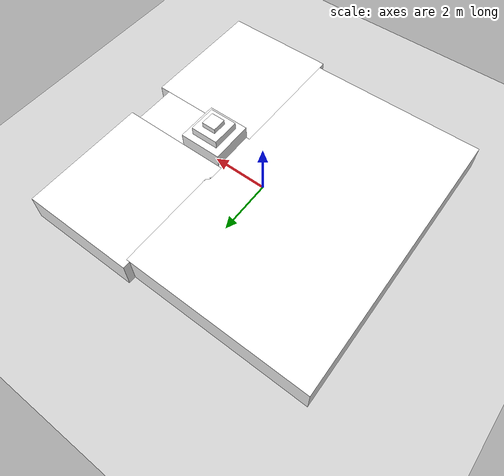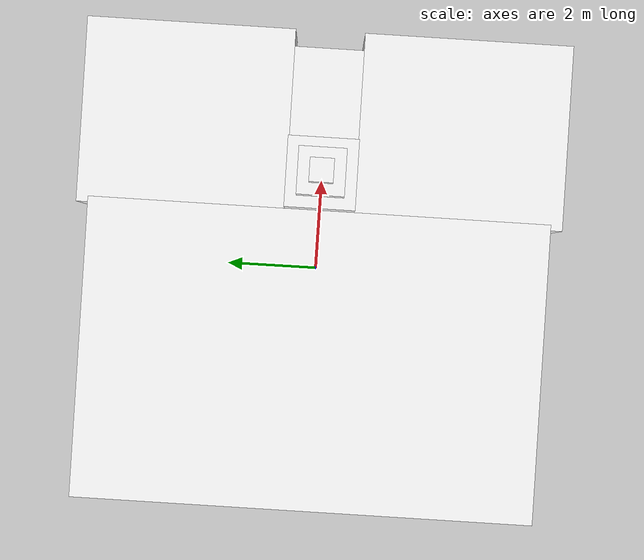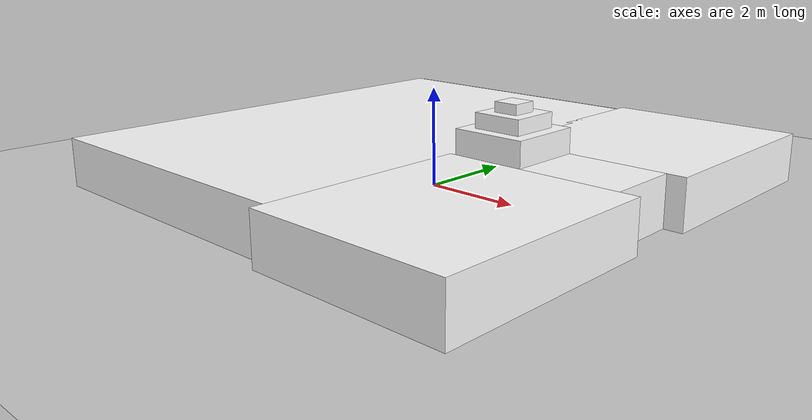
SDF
<?xml version="1.0" ?>
<sdf version="1.6">
  <world name="custom_world">
    <!-- Include the ground plane and a sun for lighting -->
    <include>
      <uri>model://ground_plane</uri>
    </include>
    <include>
      <uri>model://sun</uri>
    </include>

    <gui fullscreen='0'>
      <camera name='user_camera'>
        <pose frame=''>21.0 -21.0 14.0 0 0.3 2.348</pose>
        <view_controller>orbit</view_controller>
        <projection_type>perspective</projection_type>
      </camera>
    </gui>

    <!-- 박스 1 -->
    <model name="box_1">
      <static>true</static>
      <pose>-2 0 0.5 0 0 0</pose> <!-- Centered at (-2, 0), height at 0.5m -->
      <link name="box_1_link">
        <collision name="box_1_collision">
          <geometry>
            <box>
              <size>6.5 10 1</size>
            </box>
          </geometry>
        </collision>
        <visual name="box_1_visual">
          <geometry>
            <box>
              <size>6.5 10 1</size>
            </box>
          </geometry>
          <material>
            <script>
              <uri>model://ground/materials/scripts</uri>
              <uri>model://ground/materials/textures/</uri>
              <name>Ground/Image</name>
            </script>
            <ambient>1 1 1 1</ambient>
            <diffuse>1 1 1 1</diffuse>
            <specular>0.1 0.1 0.1 1</specular>
            <emissive>0 0 0 1</emissive>
          </material>
        </visual>
      </link>
    </model>

    <!-- 박스 2 -->
    <model name="box_2">
      <static>true</static>
      <pose>3.125 3 0.5 0 0 0</pose> <!-- Centered at (3, 3), height at 0.5m -->
      <link name="box_2_link">
        <collision name="box_2_collision">
          <geometry>
            <box>
              <size>4 4.5 1</size>
            </box>
          </geometry>
        </collision>
        <visual name="box_2_visual">
          <geometry>
            <box>
              <size>4 4.5 1</size>
            </box>
          </geometry>
          <material>
            <script>
              <uri>model://ground/materials/scripts</uri>
              <uri>model://ground/materials/textures/</uri>
              <name>Ground/Image</name>
            </script>
            <ambient>1 1 1 1</ambient>
            <diffuse>1 1 1 1</diffuse>
            <specular>0.1 0.1 0.1 1</specular>
            <emissive>0 0 0 1</emissive>
          </material>
        </visual>
      </link>
    </model>

    <!-- 박스 3 -->
    <model name="box_3">
      <static>true</static>
      <pose>3.125 -3 0.5 0 0 0</pose> <!-- Centered at (3, -3), height at 0.5m -->
      <link name="box_3_link">
        <collision name="box_3_collision">
          <geometry>
            <box>
              <size>4 4.5 1</size>
            </box>
          </geometry>
        </collision>
        <visual name="box_3_visual">
          <geometry>
            <box>
              <size>4 4.5 1</size>
            </box>
          </geometry>
          <material>
            <script>
              <uri>model://ground/materials/scripts</uri>
              <uri>model://ground/materials/textures/</uri>
              <name>Ground/Image</name>
            </script>
            <ambient>1 1 1 1</ambient>
            <diffuse>1 1 1 1</diffuse>
            <specular>0.1 0.1 0.1 1</specular>
            <emissive>0 0 0 1</emissive>
          </material>
        </visual>
      </link>
    </model>

    <!-- 박스 4 -->
    <model name="box_4">
      <static>true</static>
      <pose>3.75 0 0.5 0 0 0</pose> <!-- Centered at (4, 0), height at 0.5m -->
      <link name="box_4_link">
        <collision name="box_4_collision">
          <geometry>
            <box>
              <size>2 1.5 1</size>
            </box>
          </geometry>
        </collision>
        <visual name="box_4_visual">
          <geometry>
            <box>
              <size>2 1.5 1</size>
            </box>
          </geometry>
          <material>
            <script>
              <uri>model://ground/materials/scripts</uri>
              <uri>model://ground/materials/textures/</uri>
              <name>Ground/Image</name>
            </script>
            <ambient>1 1 1 1</ambient>
            <diffuse>1 1 1 1</diffuse>
            <specular>0.1 0.1 0.1 1</specular>
            <emissive>0 0 0 1</emissive>
          </material>
        </visual>
      </link>
    </model>

    <!-- 피라미드 박스 1 (가장 아래층, 높이 1m) -->
    <model name="pyramid_box_1">
      <static>true</static>
      <pose>2 0 0.4 0 0 0</pose> <!-- Centered at (2, 0), base at 0m, height at 1m -->
      <link name="pyramid_box_1_link">
        <collision name="pyramid_box_1_collision">
          <geometry>
            <box>
              <size>1.5 1.5 0.8</size>
            </box>
          </geometry>
        </collision>
        <visual name="pyramid_box_1_visual">
          <geometry>
            <box>
              <size>1.5 1.5 0.8</size>
            </box>
          </geometry>
          <material>
            <script>
              <uri>model://ground/materials/scripts</uri>
              <uri>model://ground/materials/textures/</uri>
              <name>Ground/Image</name>
            </script>
            <ambient>1 1 1 1</ambient>
            <diffuse>1 1 1 1</diffuse>
            <specular>0.1 0.1 0.1 1</specular>
            <emissive>0 0 0 1</emissive>
          </material>
        </visual>
      </link>
    </model>

    <!-- 피라미드 박스 2 (중간 아래층) -->
    <model name="pyramid_box_2">
      <static>true</static>
      <pose>2 0 1.25 0 0 0</pose> <!-- Centered at (2, 0), base at 1m, height at 0.3m -->
      <link name="pyramid_box_2_link">
        <collision name="pyramid_box_2_collision">
          <geometry>
            <box>
              <size>1.5 1.5 0.5</size>
            </box>
          </geometry>
        </collision>
        <visual name="pyramid_box_2_visual">
          <geometry>
            <box>
              <size>1.5 1.5 0.5</size>
            </box>
          </geometry>
          <material>
            <script>
              <uri>model://ground/materials/scripts</uri>
              <uri>model://ground/materials/textures/</uri>
              <name>Ground/Image</name>
            </script>
            <ambient>1 1 1 1</ambient>
            <diffuse>1 1 1 1</diffuse>
            <specular>0.1 0.1 0.1 1</specular>
            <emissive>0 0 0 1</emissive>
          </material>
        </visual>
      </link>
    </model>

    <!-- 피라미드 박스 3 (중간 위층) -->
    <model name="pyramid_box_3">
      <static>true</static>
      <pose>2 0 1.65 0 0 0</pose> <!-- Centered at (2, 0), base at 1.3m, height at 0.3m -->
      <link name="pyramid_box_3_link">
        <collision name="pyramid_box_3_collision">
          <geometry>
            <box>
              <size>1 1 0.3</size>
            </box>
          </geometry>
        </collision>
        <visual name="pyramid_box_3_visual">
          <geometry>
            <box>
              <size>1 1 0.3</size>
            </box>
          </geometry>
          <material>
            <script>
              <uri>model://ground/materials/scripts</uri>
              <uri>model://ground/materials/textures/</uri>
              <name>Ground/Image</name>
            </script>
            <ambient>1 1 1 1</ambient>
            <diffuse>1 1 1 1</diffuse>
            <specular>0.1 0.1 0.1 1</specular>
            <emissive>0 0 0 1</emissive>
          </material>
        </visual>
      </link>
    </model>

    <!-- 피라미드 박스 4 (가장 위층) -->
    <model name="pyramid_box_4">
      <static>true</static>
      <pose>2 0 1.9 0 0 0</pose> <!-- Centered at (2, 0), base at 1.5m, height at 0.1m -->
      <link name="pyramid_box_4_link">
        <collision name="pyramid_box_4_collision">
          <geometry>
            <box>
              <size>0.5 0.5 0.2</size>
            </box>
          </geometry>
        </collision>
        <visual name="pyramid_box_4_visual">
          <geometry>
            <box>
              <size>0.5 0.5 0.2</size>
            </box>
          </geometry>
          <material>
            <script>
              <uri>model://ground/materials/scripts</uri>
              <uri>model://ground/materials/textures/</uri>
              <name>Ground/Image</name>
            </script>
            <ambient>1 1 1 1</ambient>
            <diffuse>1 1 1 1</diffuse>
            <specular>0.1 0.1 0.1 1</specular>
            <emissive>0 0 0 1</emissive>
          </material>
        </visual>
      </link>
    </model>

  </world>
</sdf>
